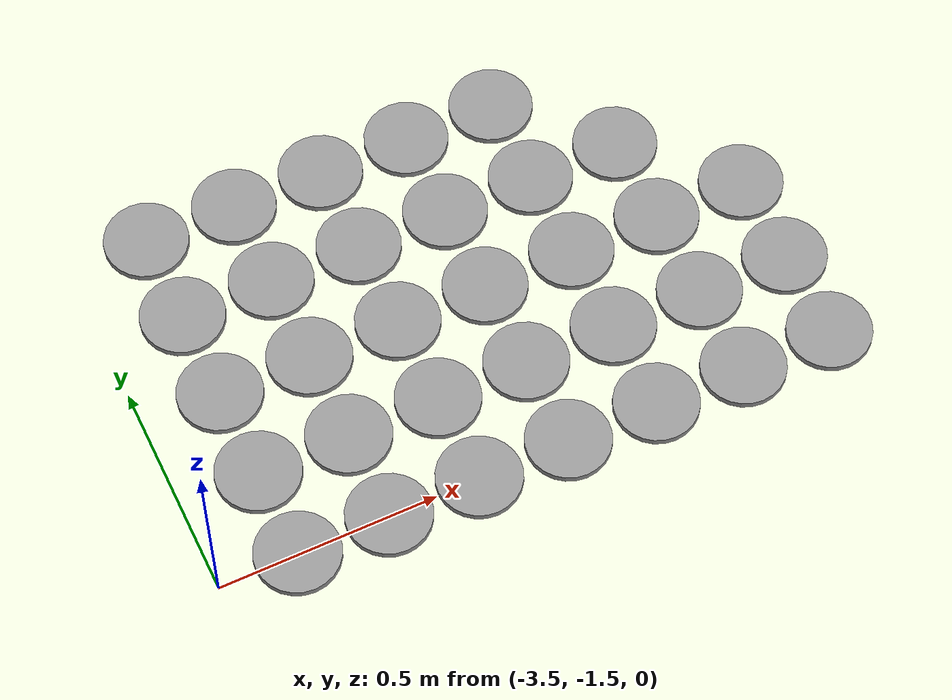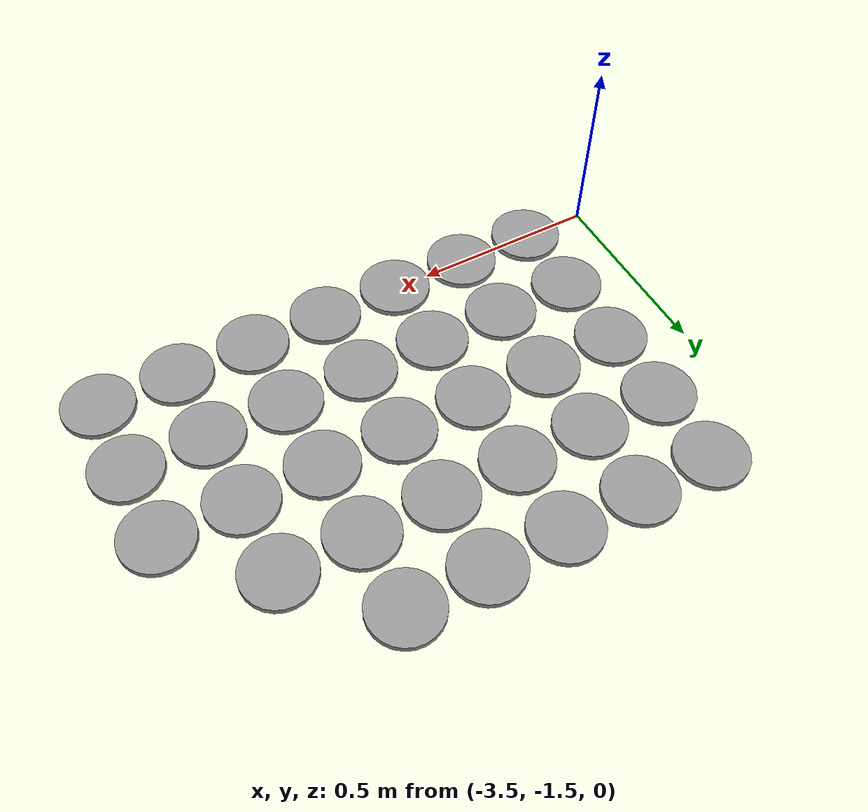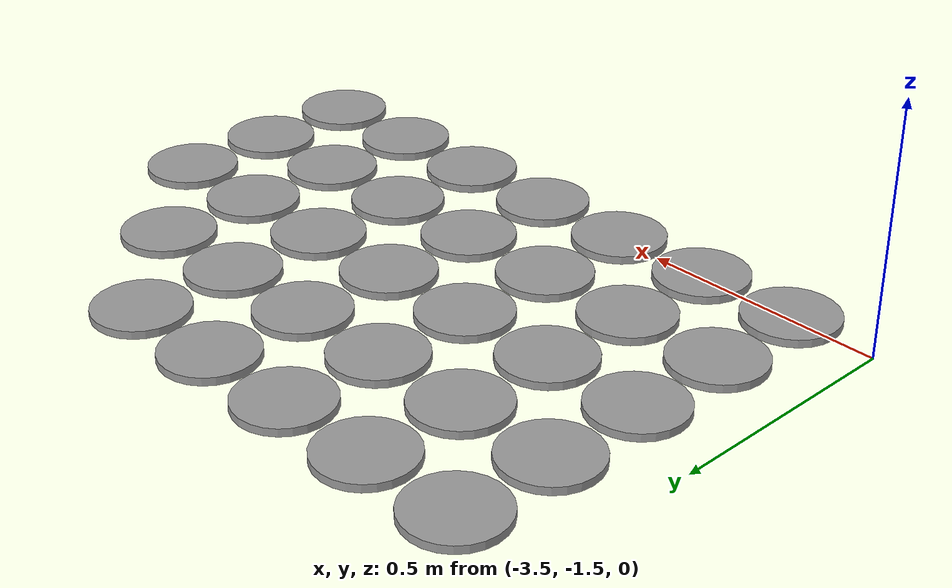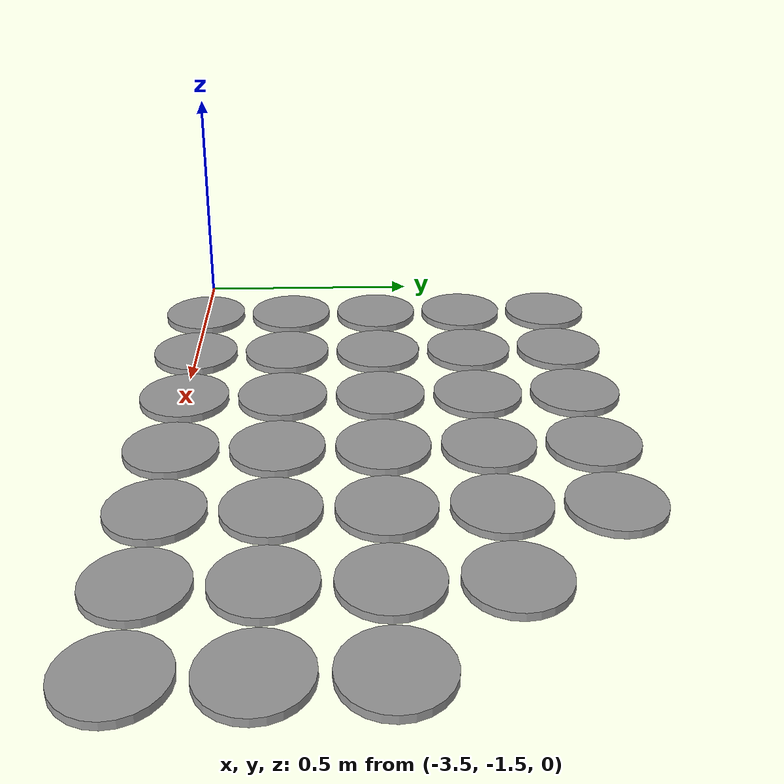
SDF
<sdf version="1.6">
 <world name="default">
  <model name="unit_cylinder_clone_540">
   <pose>-3.32 -1.5 0.008111 0 0 0</pose>
   <link name="link">
    <inertial>
     <mass>1</mass>
     <inertia><ixx>0.145833</ixx><ixy>0</ixy><ixz>0</ixz><iyy>0.145833</iyy><iyz>0</iyz><izz>0.125</izz></inertia>
    </inertial>
    <collision name="collision">
     <geometry><cylinder><radius>0.0950718</radius><length>0.0162339</length></cylinder></geometry>
     <max_contacts>5</max_contacts>
    </collision>
    <visual name="visual">
     <geometry><cylinder><radius>0.0950718</radius><length>0.0162339</length></cylinder></geometry>
     <material>
      <script><name>Gazebo/Grey</name><uri>file://media/materials/scripts/gazebo.material</uri></script>
     </material>
    </visual>
   </link>
  </model>
  <model name="unit_cylinder_clone_541">
   <pose>-3.32 -1.29 0.008111 0 0 0</pose>
   <link name="link">
    <inertial>
     <mass>1</mass>
     <inertia><ixx>0.145833</ixx><ixy>0</ixy><ixz>0</ixz><iyy>0.145833</iyy><iyz>0</iyz><izz>0.125</izz></inertia>
    </inertial>
    <collision name="collision">
     <geometry><cylinder><radius>0.0950718</radius><length>0.0162339</length></cylinder></geometry>
     <max_contacts>5</max_contacts>
    </collision>
    <visual name="visual">
     <geometry><cylinder><radius>0.0950718</radius><length>0.0162339</length></cylinder></geometry>
     <material>
      <script><name>Gazebo/Grey</name><uri>file://media/materials/scripts/gazebo.material</uri></script>
     </material>
    </visual>
   </link>
  </model>
  <model name="unit_cylinder_clone_542">
   <pose>-3.32 -1.08 0.008111 0 0 0</pose>
   <link name="link">
    <inertial>
     <mass>1</mass>
     <inertia><ixx>0.145833</ixx><ixy>0</ixy><ixz>0</ixz><iyy>0.145833</iyy><iyz>0</iyz><izz>0.125</izz></inertia>
    </inertial>
    <collision name="collision">
     <geometry><cylinder><radius>0.0950718</radius><length>0.0162339</length></cylinder></geometry>
     <max_contacts>5</max_contacts>
    </collision>
    <visual name="visual">
     <geometry><cylinder><radius>0.0950718</radius><length>0.0162339</length></cylinder></geometry>
     <material>
      <script><name>Gazebo/Grey</name><uri>file://media/materials/scripts/gazebo.material</uri></script>
     </material>
    </visual>
   </link>
  </model>
  <model name="unit_cylinder_clone_543">
   <pose>-3.32 -0.87 0.008111 0 0 0</pose>
   <link name="link">
    <inertial>
     <mass>1</mass>
     <inertia><ixx>0.145833</ixx><ixy>0</ixy><ixz>0</ixz><iyy>0.145833</iyy><iyz>0</iyz><izz>0.125</izz></inertia>
    </inertial>
    <collision name="collision">
     <geometry><cylinder><radius>0.0950718</radius><length>0.0162339</length></cylinder></geometry>
     <max_contacts>5</max_contacts>
    </collision>
    <visual name="visual">
     <geometry><cylinder><radius>0.0950718</radius><length>0.0162339</length></cylinder></geometry>
     <material>
      <script><name>Gazebo/Grey</name><uri>file://media/materials/scripts/gazebo.material</uri></script>
     </material>
    </visual>
   </link>
  </model>
  <model name="unit_cylinder_clone_544">
   <pose>-3.32 -0.66 0.008111 0 0 0</pose>
   <link name="link">
    <inertial>
     <mass>1</mass>
     <inertia><ixx>0.145833</ixx><ixy>0</ixy><ixz>0</ixz><iyy>0.145833</iyy><iyz>0</iyz><izz>0.125</izz></inertia>
    </inertial>
    <collision name="collision">
     <geometry><cylinder><radius>0.0950718</radius><length>0.0162339</length></cylinder></geometry>
     <max_contacts>5</max_contacts>
    </collision>
    <visual name="visual">
     <geometry><cylinder><radius>0.0950718</radius><length>0.0162339</length></cylinder></geometry>
     <material>
      <script><name>Gazebo/Grey</name><uri>file://media/materials/scripts/gazebo.material</uri></script>
     </material>
    </visual>
   </link>
  </model>
  <model name="unit_cylinder_clone_545">
   <pose>-3.11 -1.5 0.008111 0 0 0</pose>
   <link name="link">
    <inertial>
     <mass>1</mass>
     <inertia><ixx>0.145833</ixx><ixy>0</ixy><ixz>0</ixz><iyy>0.145833</iyy><iyz>0</iyz><izz>0.125</izz></inertia>
    </inertial>
    <collision name="collision">
     <geometry><cylinder><radius>0.0950718</radius><length>0.0162339</length></cylinder></geometry>
     <max_contacts>5</max_contacts>
    </collision>
    <visual name="visual">
     <geometry><cylinder><radius>0.0950718</radius><length>0.0162339</length></cylinder></geometry>
     <material>
      <script><name>Gazebo/Grey</name><uri>file://media/materials/scripts/gazebo.material</uri></script>
     </material>
    </visual>
   </link>
  </model>
  <model name="unit_cylinder_clone_546">
   <pose>-3.11 -1.29 0.008111 0 0 0</pose>
   <link name="link">
    <inertial>
     <mass>1</mass>
     <inertia><ixx>0.145833</ixx><ixy>0</ixy><ixz>0</ixz><iyy>0.145833</iyy><iyz>0</iyz><izz>0.125</izz></inertia>
    </inertial>
    <collision name="collision">
     <geometry><cylinder><radius>0.0950718</radius><length>0.0162339</length></cylinder></geometry>
     <max_contacts>5</max_contacts>
    </collision>
    <visual name="visual">
     <geometry><cylinder><radius>0.0950718</radius><length>0.0162339</length></cylinder></geometry>
     <material>
      <script><name>Gazebo/Grey</name><uri>file://media/materials/scripts/gazebo.material</uri></script>
     </material>
    </visual>
   </link>
  </model>
  <model name="unit_cylinder_clone_547">
   <pose>-3.11 -1.08 0.008111 0 0 0</pose>
   <link name="link">
    <inertial>
     <mass>1</mass>
     <inertia><ixx>0.145833</ixx><ixy>0</ixy><ixz>0</ixz><iyy>0.145833</iyy><iyz>0</iyz><izz>0.125</izz></inertia>
    </inertial>
    <collision name="collision">
     <geometry><cylinder><radius>0.0950718</radius><length>0.0162339</length></cylinder></geometry>
     <max_contacts>5</max_contacts>
    </collision>
    <visual name="visual">
     <geometry><cylinder><radius>0.0950718</radius><length>0.0162339</length></cylinder></geometry>
     <material>
      <script><name>Gazebo/Grey</name><uri>file://media/materials/scripts/gazebo.material</uri></script>
     </material>
    </visual>
   </link>
  </model>
  <model name="unit_cylinder_clone_548">
   <pose>-3.11 -0.87 0.008111 0 0 0</pose>
   <link name="link">
    <inertial>
     <mass>1</mass>
     <inertia><ixx>0.145833</ixx><ixy>0</ixy><ixz>0</ixz><iyy>0.145833</iyy><iyz>0</iyz><izz>0.125</izz></inertia>
    </inertial>
    <collision name="collision">
     <geometry><cylinder><radius>0.0950718</radius><length>0.0162339</length></cylinder></geometry>
     <max_contacts>5</max_contacts>
    </collision>
    <visual name="visual">
     <geometry><cylinder><radius>0.0950718</radius><length>0.0162339</length></cylinder></geometry>
     <material>
      <script><name>Gazebo/Grey</name><uri>file://media/materials/scripts/gazebo.material</uri></script>
     </material>
    </visual>
   </link>
  </model>
  <model name="unit_cylinder_clone_549">
   <pose>-3.11 -0.66 0.008111 0 0 0</pose>
   <link name="link">
    <inertial>
     <mass>1</mass>
     <inertia><ixx>0.145833</ixx><ixy>0</ixy><ixz>0</ixz><iyy>0.145833</iyy><iyz>0</iyz><izz>0.125</izz></inertia>
    </inertial>
    <collision name="collision">
     <geometry><cylinder><radius>0.0950718</radius><length>0.0162339</length></cylinder></geometry>
     <max_contacts>5</max_contacts>
    </collision>
    <visual name="visual">
     <geometry><cylinder><radius>0.0950718</radius><length>0.0162339</length></cylinder></geometry>
     <material>
      <script><name>Gazebo/Grey</name><uri>file://media/materials/scripts/gazebo.material</uri></script>
     </material>
    </visual>
   </link>
  </model>
  <model name="unit_cylinder_clone_550">
   <pose>-2.9 -1.5 0.008111 0 0 0</pose>
   <link name="link">
    <inertial>
     <mass>1</mass>
     <inertia><ixx>0.145833</ixx><ixy>0</ixy><ixz>0</ixz><iyy>0.145833</iyy><iyz>0</iyz><izz>0.125</izz></inertia>
    </inertial>
    <collision name="collision">
     <geometry><cylinder><radius>0.0950718</radius><length>0.0162339</length></cylinder></geometry>
     <max_contacts>5</max_contacts>
    </collision>
    <visual name="visual">
     <geometry><cylinder><radius>0.0950718</radius><length>0.0162339</length></cylinder></geometry>
     <material>
      <script><name>Gazebo/Grey</name><uri>file://media/materials/scripts/gazebo.material</uri></script>
     </material>
    </visual>
   </link>
  </model>
  <model name="unit_cylinder_clone_551">
   <pose>-2.9 -1.29 0.008111 0 0 0</pose>
   <link name="link">
    <inertial>
     <mass>1</mass>
     <inertia><ixx>0.145833</ixx><ixy>0</ixy><ixz>0</ixz><iyy>0.145833</iyy><iyz>0</iyz><izz>0.125</izz></inertia>
    </inertial>
    <collision name="collision">
     <geometry><cylinder><radius>0.0950718</radius><length>0.0162339</length></cylinder></geometry>
     <max_contacts>5</max_contacts>
    </collision>
    <visual name="visual">
     <geometry><cylinder><radius>0.0950718</radius><length>0.0162339</length></cylinder></geometry>
     <material>
      <script><name>Gazebo/Grey</name><uri>file://media/materials/scripts/gazebo.material</uri></script>
     </material>
    </visual>
   </link>
  </model>
  <model name="unit_cylinder_clone_552">
   <pose>-2.9 -1.08 0.008111 0 0 0</pose>
   <link name="link">
    <inertial>
     <mass>1</mass>
     <inertia><ixx>0.145833</ixx><ixy>0</ixy><ixz>0</ixz><iyy>0.145833</iyy><iyz>0</iyz><izz>0.125</izz></inertia>
    </inertial>
    <collision name="collision">
     <geometry><cylinder><radius>0.0950718</radius><length>0.0162339</length></cylinder></geometry>
     <max_contacts>5</max_contacts>
    </collision>
    <visual name="visual">
     <geometry><cylinder><radius>0.0950718</radius><length>0.0162339</length></cylinder></geometry>
     <material>
      <script><name>Gazebo/Grey</name><uri>file://media/materials/scripts/gazebo.material</uri></script>
     </material>
    </visual>
   </link>
  </model>
  <model name="unit_cylinder_clone_553">
   <pose>-2.9 -0.87 0.008111 0 0 0</pose>
   <link name="link">
    <inertial>
     <mass>1</mass>
     <inertia><ixx>0.145833</ixx><ixy>0</ixy><ixz>0</ixz><iyy>0.145833</iyy><iyz>0</iyz><izz>0.125</izz></inertia>
    </inertial>
    <collision name="collision">
     <geometry><cylinder><radius>0.0950718</radius><length>0.0162339</length></cylinder></geometry>
     <max_contacts>5</max_contacts>
    </collision>
    <visual name="visual">
     <geometry><cylinder><radius>0.0950718</radius><length>0.0162339</length></cylinder></geometry>
     <material>
      <script><name>Gazebo/Grey</name><uri>file://media/materials/scripts/gazebo.material</uri></script>
     </material>
    </visual>
   </link>
  </model>
  <model name="unit_cylinder_clone_554">
   <pose>-2.9 -0.66 0.008111 0 0 0</pose>
   <link name="link">
    <inertial>
     <mass>1</mass>
     <inertia><ixx>0.145833</ixx><ixy>0</ixy><ixz>0</ixz><iyy>0.145833</iyy><iyz>0</iyz><izz>0.125</izz></inertia>
    </inertial>
    <collision name="collision">
     <geometry><cylinder><radius>0.0950718</radius><length>0.0162339</length></cylinder></geometry>
     <max_contacts>5</max_contacts>
    </collision>
    <visual name="visual">
     <geometry><cylinder><radius>0.0950718</radius><length>0.0162339</length></cylinder></geometry>
     <material>
      <script><name>Gazebo/Grey</name><uri>file://media/materials/scripts/gazebo.material</uri></script>
     </material>
    </visual>
   </link>
  </model>
  <model name="unit_cylinder_clone_555">
   <pose>-2.69 -1.5 0.008111 0 0 0</pose>
   <link name="link">
    <inertial>
     <mass>1</mass>
     <inertia><ixx>0.145833</ixx><ixy>0</ixy><ixz>0</ixz><iyy>0.145833</iyy><iyz>0</iyz><izz>0.125</izz></inertia>
    </inertial>
    <collision name="collision">
     <geometry><cylinder><radius>0.0950718</radius><length>0.0162339</length></cylinder></geometry>
     <max_contacts>5</max_contacts>
    </collision>
    <visual name="visual">
     <geometry><cylinder><radius>0.0950718</radius><length>0.0162339</length></cylinder></geometry>
     <material>
      <script><name>Gazebo/Grey</name><uri>file://media/materials/scripts/gazebo.material</uri></script>
     </material>
    </visual>
   </link>
  </model>
  <model name="unit_cylinder_clone_556">
   <pose>-2.69 -1.29 0.008111 0 0 0</pose>
   <link name="link">
    <inertial>
     <mass>1</mass>
     <inertia><ixx>0.145833</ixx><ixy>0</ixy><ixz>0</ixz><iyy>0.145833</iyy><iyz>0</iyz><izz>0.125</izz></inertia>
    </inertial>
    <collision name="collision">
     <geometry><cylinder><radius>0.0950718</radius><length>0.0162339</length></cylinder></geometry>
     <max_contacts>5</max_contacts>
    </collision>
    <visual name="visual">
     <geometry><cylinder><radius>0.0950718</radius><length>0.0162339</length></cylinder></geometry>
     <material>
      <script><name>Gazebo/Grey</name><uri>file://media/materials/scripts/gazebo.material</uri></script>
     </material>
    </visual>
   </link>
  </model>
  <model name="unit_cylinder_clone_557">
   <pose>-2.69 -1.08 0.008111 0 0 0</pose>
   <link name="link">
    <inertial>
     <mass>1</mass>
     <inertia><ixx>0.145833</ixx><ixy>0</ixy><ixz>0</ixz><iyy>0.145833</iyy><iyz>0</iyz><izz>0.125</izz></inertia>
    </inertial>
    <collision name="collision">
     <geometry><cylinder><radius>0.0950718</radius><length>0.0162339</length></cylinder></geometry>
     <max_contacts>5</max_contacts>
    </collision>
    <visual name="visual">
     <geometry><cylinder><radius>0.0950718</radius><length>0.0162339</length></cylinder></geometry>
     <material>
      <script><name>Gazebo/Grey</name><uri>file://media/materials/scripts/gazebo.material</uri></script>
     </material>
    </visual>
   </link>
  </model>
  <model name="unit_cylinder_clone_558">
   <pose>-2.69 -0.87 0.008111 0 0 0</pose>
   <link name="link">
    <inertial>
     <mass>1</mass>
     <inertia><ixx>0.145833</ixx><ixy>0</ixy><ixz>0</ixz><iyy>0.145833</iyy><iyz>0</iyz><izz>0.125</izz></inertia>
    </inertial>
    <collision name="collision">
     <geometry><cylinder><radius>0.0950718</radius><length>0.0162339</length></cylinder></geometry>
     <max_contacts>5</max_contacts>
    </collision>
    <visual name="visual">
     <geometry><cylinder><radius>0.0950718</radius><length>0.0162339</length></cylinder></geometry>
     <material>
      <script><name>Gazebo/Grey</name><uri>file://media/materials/scripts/gazebo.material</uri></script>
     </material>
    </visual>
   </link>
  </model>
  <model name="unit_cylinder_clone_559">
   <pose>-2.69 -0.66 0.008111 0 0 0</pose>
   <link name="link">
    <inertial>
     <mass>1</mass>
     <inertia><ixx>0.145833</ixx><ixy>0</ixy><ixz>0</ixz><iyy>0.145833</iyy><iyz>0</iyz><izz>0.125</izz></inertia>
    </inertial>
    <collision name="collision">
     <geometry><cylinder><radius>0.0950718</radius><length>0.0162339</length></cylinder></geometry>
     <max_contacts>5</max_contacts>
    </collision>
    <visual name="visual">
     <geometry><cylinder><radius>0.0950718</radius><length>0.0162339</length></cylinder></geometry>
     <material>
      <script><name>Gazebo/Grey</name><uri>file://media/materials/scripts/gazebo.material</uri></script>
     </material>
    </visual>
   </link>
  </model>
  <model name="unit_cylinder_clone_560">
   <pose>-2.48 -1.5 0.008111 0 0 0</pose>
   <link name="link">
    <inertial>
     <mass>1</mass>
     <inertia><ixx>0.145833</ixx><ixy>0</ixy><ixz>0</ixz><iyy>0.145833</iyy><iyz>0</iyz><izz>0.125</izz></inertia>
    </inertial>
    <collision name="collision">
     <geometry><cylinder><radius>0.0950718</radius><length>0.0162339</length></cylinder></geometry>
     <max_contacts>5</max_contacts>
    </collision>
    <visual name="visual">
     <geometry><cylinder><radius>0.0950718</radius><length>0.0162339</length></cylinder></geometry>
     <material>
      <script><name>Gazebo/Grey</name><uri>file://media/materials/scripts/gazebo.material</uri></script>
     </material>
    </visual>
   </link>
  </model>
  <model name="unit_cylinder_clone_561">
   <pose>-2.48 -1.29 0.008111 0 0 0</pose>
   <link name="link">
    <inertial>
     <mass>1</mass>
     <inertia><ixx>0.145833</ixx><ixy>0</ixy><ixz>0</ixz><iyy>0.145833</iyy><iyz>0</iyz><izz>0.125</izz></inertia>
    </inertial>
    <collision name="collision">
     <geometry><cylinder><radius>0.0950718</radius><length>0.0162339</length></cylinder></geometry>
     <max_contacts>5</max_contacts>
    </collision>
    <visual name="visual">
     <geometry><cylinder><radius>0.0950718</radius><length>0.0162339</length></cylinder></geometry>
     <material>
      <script><name>Gazebo/Grey</name><uri>file://media/materials/scripts/gazebo.material</uri></script>
     </material>
    </visual>
   </link>
  </model>
  <model name="unit_cylinder_clone_562">
   <pose>-2.48 -1.08 0.008111 0 0 0</pose>
   <link name="link">
    <inertial>
     <mass>1</mass>
     <inertia><ixx>0.145833</ixx><ixy>0</ixy><ixz>0</ixz><iyy>0.145833</iyy><iyz>0</iyz><izz>0.125</izz></inertia>
    </inertial>
    <collision name="collision">
     <geometry><cylinder><radius>0.0950718</radius><length>0.0162339</length></cylinder></geometry>
     <max_contacts>5</max_contacts>
    </collision>
    <visual name="visual">
     <geometry><cylinder><radius>0.0950718</radius><length>0.0162339</length></cylinder></geometry>
     <material>
      <script><name>Gazebo/Grey</name><uri>file://media/materials/scripts/gazebo.material</uri></script>
     </material>
    </visual>
   </link>
  </model>
  <model name="unit_cylinder_clone_563">
   <pose>-2.48 -0.87 0.008111 0 0 0</pose>
   <link name="link">
    <inertial>
     <mass>1</mass>
     <inertia><ixx>0.145833</ixx><ixy>0</ixy><ixz>0</ixz><iyy>0.145833</iyy><iyz>0</iyz><izz>0.125</izz></inertia>
    </inertial>
    <collision name="collision">
     <geometry><cylinder><radius>0.0950718</radius><length>0.0162339</length></cylinder></geometry>
     <max_contacts>5</max_contacts>
    </collision>
    <visual name="visual">
     <geometry><cylinder><radius>0.0950718</radius><length>0.0162339</length></cylinder></geometry>
     <material>
      <script><name>Gazebo/Grey</name><uri>file://media/materials/scripts/gazebo.material</uri></script>
     </material>
    </visual>
   </link>
  </model>
  <model name="unit_cylinder_clone_564">
   <pose>-2.48 -0.66 0.008111 0 0 0</pose>
   <link name="link">
    <inertial>
     <mass>1</mass>
     <inertia><ixx>0.145833</ixx><ixy>0</ixy><ixz>0</ixz><iyy>0.145833</iyy><iyz>0</iyz><izz>0.125</izz></inertia>
    </inertial>
    <collision name="collision">
     <geometry><cylinder><radius>0.0950718</radius><length>0.0162339</length></cylinder></geometry>
     <max_contacts>5</max_contacts>
    </collision>
    <visual name="visual">
     <geometry><cylinder><radius>0.0950718</radius><length>0.0162339</length></cylinder></geometry>
     <material>
      <script><name>Gazebo/Grey</name><uri>file://media/materials/scripts/gazebo.material</uri></script>
     </material>
    </visual>
   </link>
  </model>
  <model name="unit_cylinder_clone_565">
   <pose>-2.27 -1.5 0.008111 0 0 0</pose>
   <link name="link">
    <inertial>
     <mass>1</mass>
     <inertia><ixx>0.145833</ixx><ixy>0</ixy><ixz>0</ixz><iyy>0.145833</iyy><iyz>0</iyz><izz>0.125</izz></inertia>
    </inertial>
    <collision name="collision">
     <geometry><cylinder><radius>0.0950718</radius><length>0.0162339</length></cylinder></geometry>
     <max_contacts>5</max_contacts>
    </collision>
    <visual name="visual">
     <geometry><cylinder><radius>0.0950718</radius><length>0.0162339</length></cylinder></geometry>
     <material>
      <script><name>Gazebo/Grey</name><uri>file://media/materials/scripts/gazebo.material</uri></script>
     </material>
    </visual>
   </link>
  </model>
  <model name="unit_cylinder_clone_566">
   <pose>-2.27 -1.29 0.008111 0 0 0</pose>
   <link name="link">
    <inertial>
     <mass>1</mass>
     <inertia><ixx>0.145833</ixx><ixy>0</ixy><ixz>0</ixz><iyy>0.145833</iyy><iyz>0</iyz><izz>0.125</izz></inertia>
    </inertial>
    <collision name="collision">
     <geometry><cylinder><radius>0.0950718</radius><length>0.0162339</length></cylinder></geometry>
     <max_contacts>5</max_contacts>
    </collision>
    <visual name="visual">
     <geometry><cylinder><radius>0.0950718</radius><length>0.0162339</length></cylinder></geometry>
     <material>
      <script><name>Gazebo/Grey</name><uri>file://media/materials/scripts/gazebo.material</uri></script>
     </material>
    </visual>
   </link>
  </model>
  <model name="unit_cylinder_clone_567">
   <pose>-2.27 -1.08 0.008111 0 0 0</pose>
   <link name="link">
    <inertial>
     <mass>1</mass>
     <inertia><ixx>0.145833</ixx><ixy>0</ixy><ixz>0</ixz><iyy>0.145833</iyy><iyz>0</iyz><izz>0.125</izz></inertia>
    </inertial>
    <collision name="collision">
     <geometry><cylinder><radius>0.0950718</radius><length>0.0162339</length></cylinder></geometry>
     <max_contacts>5</max_contacts>
    </collision>
    <visual name="visual">
     <geometry><cylinder><radius>0.0950718</radius><length>0.0162339</length></cylinder></geometry>
     <material>
      <script><name>Gazebo/Grey</name><uri>file://media/materials/scripts/gazebo.material</uri></script>
     </material>
    </visual>
   </link>
  </model>
  <model name="unit_cylinder_clone_568">
   <pose>-2.27 -0.87 0.008111 0 0 0</pose>
   <link name="link">
    <inertial>
     <mass>1</mass>
     <inertia><ixx>0.145833</ixx><ixy>0</ixy><ixz>0</ixz><iyy>0.145833</iyy><iyz>0</iyz><izz>0.125</izz></inertia>
    </inertial>
    <collision name="collision">
     <geometry><cylinder><radius>0.0950718</radius><length>0.0162339</length></cylinder></geometry>
     <max_contacts>5</max_contacts>
    </collision>
    <visual name="visual">
     <geometry><cylinder><radius>0.0950718</radius><length>0.0162339</length></cylinder></geometry>
     <material>
      <script><name>Gazebo/Grey</name><uri>file://media/materials/scripts/gazebo.material</uri></script>
     </material>
    </visual>
   </link>
  </model>
  <model name="unit_cylinder_clone_570">
   <pose>-2.06 -1.5 0.008111 0 0 0</pose>
   <link name="link">
    <inertial>
     <mass>1</mass>
     <inertia><ixx>0.145833</ixx><ixy>0</ixy><ixz>0</ixz><iyy>0.145833</iyy><iyz>0</iyz><izz>0.125</izz></inertia>
    </inertial>
    <collision name="collision">
     <geometry><cylinder><radius>0.0950718</radius><length>0.0162339</length></cylinder></geometry>
     <max_contacts>5</max_contacts>
    </collision>
    <visual name="visual">
     <geometry><cylinder><radius>0.0950718</radius><length>0.0162339</length></cylinder></geometry>
     <material>
      <script><name>Gazebo/Grey</name><uri>file://media/materials/scripts/gazebo.material</uri></script>
     </material>
    </visual>
   </link>
  </model>
  <model name="unit_cylinder_clone_571">
   <pose>-2.06 -1.29 0.008111 0 0 0</pose>
   <link name="link">
    <inertial>
     <mass>1</mass>
     <inertia><ixx>0.145833</ixx><ixy>0</ixy><ixz>0</ixz><iyy>0.145833</iyy><iyz>0</iyz><izz>0.125</izz></inertia>
    </inertial>
    <collision name="collision">
     <geometry><cylinder><radius>0.0950718</radius><length>0.0162339</length></cylinder></geometry>
     <max_contacts>5</max_contacts>
    </collision>
    <visual name="visual">
     <geometry><cylinder><radius>0.0950718</radius><length>0.0162339</length></cylinder></geometry>
     <material>
      <script><name>Gazebo/Grey</name><uri>file://media/materials/scripts/gazebo.material</uri></script>
     </material>
    </visual>
   </link>
  </model>
  <model name="unit_cylinder_clone_572">
   <pose>-2.06 -1.08 0.008111 0 0 0</pose>
   <link name="link">
    <inertial>
     <mass>1</mass>
     <inertia><ixx>0.145833</ixx><ixy>0</ixy><ixz>0</ixz><iyy>0.145833</iyy><iyz>0</iyz><izz>0.125</izz></inertia>
    </inertial>
    <collision name="collision">
     <geometry><cylinder><radius>0.0950718</radius><length>0.0162339</length></cylinder></geometry>
     <max_contacts>5</max_contacts>
    </collision>
    <visual name="visual">
     <geometry><cylinder><radius>0.0950718</radius><length>0.0162339</length></cylinder></geometry>
     <material>
      <script><name>Gazebo/Grey</name><uri>file://media/materials/scripts/gazebo.material</uri></script>
     </material>
    </visual>
   </link>
  </model>
 </world>
</sdf>
